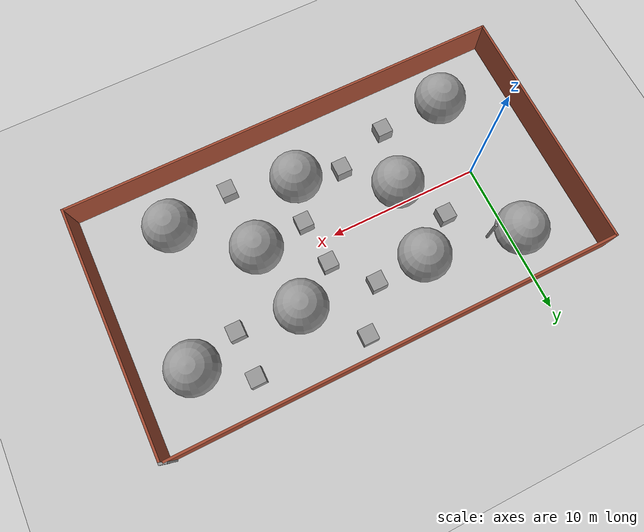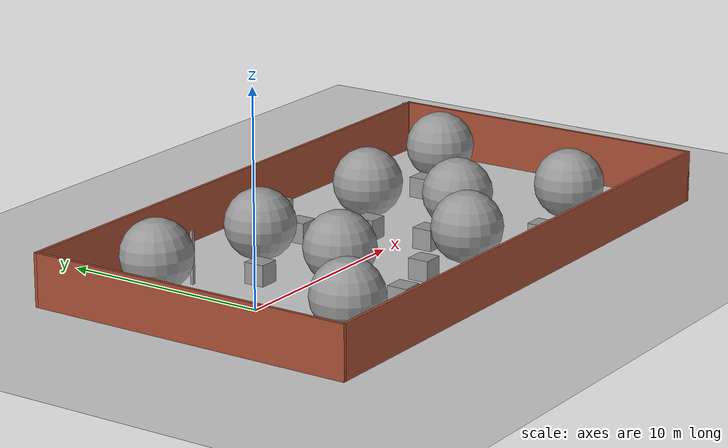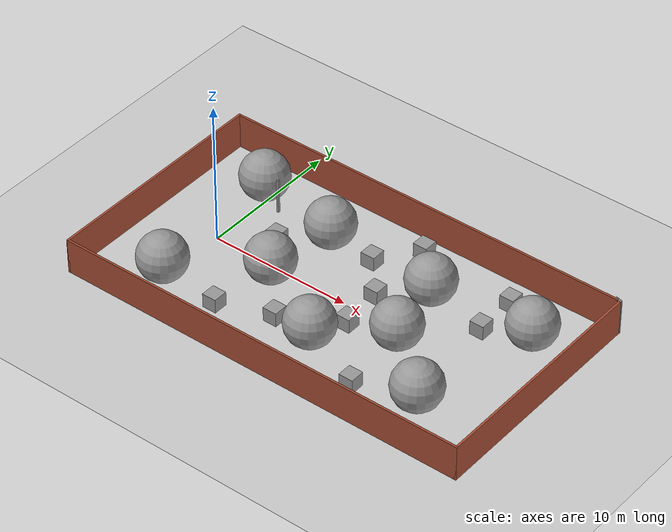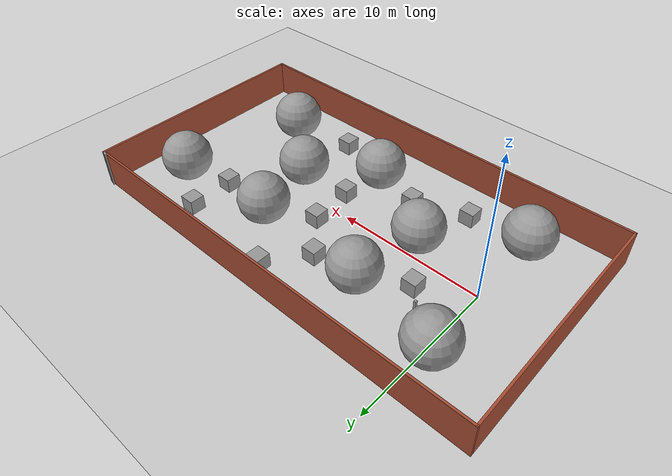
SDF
<sdf version="1.7">
 <world name="default">
  <light name="sun" type="directional">
   <pose>0 0 10 0 -0 0</pose>
   <diffuse>0.8 0.8 0.8 1</diffuse>
   <specular>0.2 0.2 0.2 1</specular>
   <attenuation>
    <range>1000</range>
    <constant>0.9</constant>
    <linear>0.01</linear>
    <quadratic>0.001</quadratic>
   </attenuation>
   <direction>-0.5 0.1 -0.9</direction>
   <spot><inner_angle>0</inner_angle><outer_angle>0</outer_angle><falloff>0</falloff></spot>
  </light>
  <model name="ground_plane">
   <static>1</static>
   <link name="link">
    <collision name="collision">
     <geometry><plane><normal>0 0 1</normal><size>100 100</size></plane></geometry>
     <surface>
      <contact><collide_bitmask>65535</collide_bitmask></contact>
      <friction><ode><mu>100</mu><mu2>50</mu2></ode></friction>
     </surface>
    </collision>
    <visual name="visual">
     <cast_shadows>0</cast_shadows>
     <geometry><plane><normal>0 0 1</normal><size>100 100</size></plane></geometry>
     <material>
      <script><uri>file://media/materials/scripts/gazebo.material</uri><name>Gazebo/Grey</name></script>
     </material>
    </visual>
   </link>
  </model>
  <gravity>0 0 -9.8</gravity>
  <magnetic_field>6e-06 2.3e-05 -4.2e-05</magnetic_field>
  <atmosphere type="adiabatic"/>
  <physics type="ode">
   <max_step_size>0.001</max_step_size>
   <real_time_factor>1</real_time_factor>
   <real_time_update_rate>1000</real_time_update_rate>
  </physics>
  <scene><ambient>0.4 0.4 0.4 1</ambient><background>0.7 0.7 0.7 1</background><shadows>1</shadows></scene>
  <audio><device>default</device></audio>
  <spherical_coordinates>
   <surface_model>EARTH_WGS84</surface_model>
   <latitude_deg>0</latitude_deg>
   <longitude_deg>0</longitude_deg>
   <elevation>0</elevation>
   <heading_deg>0</heading_deg>
  </spherical_coordinates>
  <model name="Untitled">
   <pose>9.73939 0.077684 0 0 -0 0</pose>
   <link name="Wall_19">
    <collision name="Wall_19_Collision">
     <geometry><box><size>16.25 0.15 2.5</size></box></geometry>
     <pose>0 0 1.25 0 -0 0</pose>
    </collision>
    <visual name="Wall_19_Visual">
     <pose>0 0 1.25 0 -0 0</pose>
     <geometry><box><size>16.25 0.15 2.5</size></box></geometry>
     <material>
      <script><uri>file://media/materials/scripts/gazebo.material</uri><name>Gazebo/Bricks</name></script>
      <ambient>1 1 1 1</ambient>
     </material>
     <meta><layer>0</layer></meta>
    </visual>
    <pose>-14.6834 -0.053721 0 0 -0 -1.5708</pose>
   </link>
   <link name="Wall_21">
    <collision name="Wall_21_Collision">
     <geometry><box><size>29.5 0.15 2.5</size></box></geometry>
     <pose>0 0 1.25 0 -0 0</pose>
    </collision>
    <visual name="Wall_21_Visual">
     <pose>0 0 1.25 0 -0 0</pose>
     <geometry><box><size>29.5 0.15 2.5</size></box></geometry>
     <material>
      <script><uri>file://media/materials/scripts/gazebo.material</uri><name>Gazebo/Bricks</name></script>
      <ambient>1 1 1 1</ambient>
     </material>
     <meta><layer>0</layer></meta>
    </visual>
    <pose>-0.008428 -8.10372 0 0 -0 0</pose>
   </link>
   <link name="Wall_23">
    <collision name="Wall_23_Collision">
     <geometry><box><size>29.25 0.15 2.5</size></box></geometry>
     <pose>0 0 1.25 0 -0 0</pose>
    </collision>
    <visual name="Wall_23_Visual">
     <pose>0 0 1.25 0 -0 0</pose>
     <geometry><box><size>29.25 0.15 2.5</size></box></geometry>
     <material>
      <script><uri>file://media/materials/scripts/gazebo.material</uri><name>Gazebo/Bricks</name></script>
      <ambient>1 1 1 1</ambient>
     </material>
     <meta><layer>0</layer></meta>
    </visual>
    <pose>-0.133428 7.99628 0 0 -0 0</pose>
   </link>
   <link name="Wall_27">
    <collision name="Wall_27_Collision">
     <geometry><box><size>16.25 0.15 2.5</size></box></geometry>
     <pose>0 0 1.25 0 -0 0</pose>
    </collision>
    <visual name="Wall_27_Visual">
     <pose>0 0 1.25 0 -0 0</pose>
     <geometry><box><size>16.25 0.15 2.5</size></box></geometry>
     <material>
      <script><uri>file://media/materials/scripts/gazebo.material</uri><name>Gazebo/Bricks</name></script>
      <ambient>1 1 1 1</ambient>
     </material>
     <meta><layer>0</layer></meta>
    </visual>
    <pose>14.6666 -0.053721 0 0 -0 1.5708</pose>
   </link>
   <link name="Wall_30">
    <collision name="Wall_30_Collision">
     <geometry><box><size>0.15 0.15 2.5</size></box></geometry>
     <pose>0 0 1.25 0 -0 0</pose>
    </collision>
    <visual name="Wall_30_Visual">
     <pose>0 0 1.25 0 -0 0</pose>
     <geometry><box><size>0.15 0.15 2.5</size></box></geometry>
     <material>
      <script><uri>file://media/materials/scripts/gazebo.material</uri><name>Gazebo/Grey</name></script>
      <ambient>1 1 1 1</ambient>
     </material>
     <meta><layer>0</layer></meta>
    </visual>
    <pose>14.6666 7.99628 0 0 -0 0</pose>
   </link>
   <link name="Wall_31">
    <collision name="Wall_31_Collision">
     <geometry><box><size>0.5 0.15 2.5</size></box></geometry>
     <pose>0 0 1.25 0 -0 0</pose>
    </collision>
    <visual name="Wall_31_Visual">
     <pose>0 0 1.25 0 -0 0</pose>
     <geometry><box><size>0.5 0.15 2.5</size></box></geometry>
     <material>
      <script><uri>file://media/materials/scripts/gazebo.material</uri><name>Gazebo/Grey</name></script>
      <ambient>1 1 1 1</ambient>
     </material>
     <meta><layer>0</layer></meta>
    </visual>
    <pose>14.4975 8.04157 0 0 -0 2.87979</pose>
   </link>
   <link name="Wall_37">
    <collision name="Wall_37_Collision">
     <geometry><box><size>0.15 0.15 2.5</size></box></geometry>
     <pose>0 0 1.25 0 -0 0</pose>
    </collision>
    <visual name="Wall_37_Visual">
     <pose>0 0 1.25 0 -0 0</pose>
     <geometry><box><size>0.15 0.15 2.5</size></box></geometry>
     <material>
      <script><uri>file://media/materials/scripts/gazebo.material</uri><name>Gazebo/Grey</name></script>
      <ambient>1 1 1 1</ambient>
     </material>
     <meta><layer>0</layer></meta>
    </visual>
    <pose>-8.48389 4.29671 0 0 -0 0</pose>
   </link>
   <static>1</static>
  </model>
  <model name="unit_sphere">
   <pose>5.7923 3.95608 1.67359 0 -0 0</pose>
   <link name="link">
    <inertial>
     <mass>1</mass>
     <inertia><ixx>0.1</ixx><ixy>0</ixy><ixz>0</ixz><iyy>0.1</iyy><iyz>0</iyz><izz>0.1</izz></inertia>
    </inertial>
    <collision name="collision"><geometry><sphere><radius>1.6736</radius></sphere></geometry></collision>
    <visual name="visual">
     <geometry><sphere><radius>1.6736</radius></sphere></geometry>
     <material>
      <script><name>Gazebo/Grey</name><uri>file://media/materials/scripts/gazebo.material</uri></script>
     </material>
    </visual>
   </link>
  </model>
  <model name="unit_sphere_clone">
   <pose>5.05828 -0.946899 1.6736 0 -0 0</pose>
   <link name="link">
    <inertial>
     <mass>1</mass>
     <inertia><ixx>0.1</ixx><ixy>0</ixy><ixz>0</ixz><iyy>0.1</iyy><iyz>0</iyz><izz>0.1</izz></inertia>
    </inertial>
    <collision name="collision"><geometry><sphere><radius>1.6736</radius></sphere></geometry></collision>
    <visual name="visual">
     <geometry><sphere><radius>1.6736</radius></sphere></geometry>
     <material>
      <script><name>Gazebo/Grey</name><uri>file://media/materials/scripts/gazebo.material</uri></script>
     </material>
    </visual>
   </link>
  </model>
  <model name="unit_sphere_clone_0">
   <pose>-0.131006 -4.9221 1.6736 0 -0 0</pose>
   <link name="link">
    <inertial>
     <mass>1</mass>
     <inertia><ixx>0.1</ixx><ixy>0</ixy><ixz>0</ixz><iyy>0.1</iyy><iyz>0</iyz><izz>0.1</izz></inertia>
    </inertial>
    <collision name="collision"><geometry><sphere><radius>1.6736</radius></sphere></geometry></collision>
    <visual name="visual">
     <geometry><sphere><radius>1.6736</radius></sphere></geometry>
     <material>
      <script><name>Gazebo/Grey</name><uri>file://media/materials/scripts/gazebo.material</uri></script>
     </material>
    </visual>
   </link>
  </model>
  <model name="unit_sphere_clone_1">
   <pose>13.8546 3.50691 1.6736 0 -0 0</pose>
   <link name="link">
    <inertial>
     <mass>1</mass>
     <inertia><ixx>0.1</ixx><ixy>0</ixy><ixz>0</ixz><iyy>0.1</iyy><iyz>0</iyz><izz>0.1</izz></inertia>
    </inertial>
    <collision name="collision"><geometry><sphere><radius>1.6736</radius></sphere></geometry></collision>
    <visual name="visual">
     <geometry><sphere><radius>1.6736</radius></sphere></geometry>
     <material>
      <script><name>Gazebo/Grey</name><uri>file://media/materials/scripts/gazebo.material</uri></script>
     </material>
    </visual>
   </link>
  </model>
  <model name="unit_sphere_clone_2">
   <pose>10.6559 -4.0925 1.6736 0 -0 0</pose>
   <link name="link">
    <inertial>
     <mass>1</mass>
     <inertia><ixx>0.1</ixx><ixy>0</ixy><ixz>0</ixz><iyy>0.1</iyy><iyz>0</iyz><izz>0.1</izz></inertia>
    </inertial>
    <collision name="collision"><geometry><sphere><radius>1.6736</radius></sphere></geometry></collision>
    <visual name="visual">
     <geometry><sphere><radius>1.6736</radius></sphere></geometry>
     <material>
      <script><name>Gazebo/Grey</name><uri>file://media/materials/scripts/gazebo.material</uri></script>
     </material>
    </visual>
   </link>
  </model>
  <model name="unit_sphere_clone_3">
   <pose>-0.380016 5.07662 1.6736 -0.051521 -0.009717 0.001516</pose>
   <link name="link">
    <inertial>
     <mass>1</mass>
     <inertia><ixx>0.1</ixx><ixy>0</ixy><ixz>0</ixz><iyy>0.1</iyy><iyz>0</iyz><izz>0.1</izz></inertia>
    </inertial>
    <collision name="collision"><geometry><sphere><radius>1.6736</radius></sphere></geometry></collision>
    <visual name="visual">
     <geometry><sphere><radius>1.6736</radius></sphere></geometry>
     <material>
      <script><name>Gazebo/Grey</name><uri>file://media/materials/scripts/gazebo.material</uri></script>
     </material>
    </visual>
   </link>
  </model>
  <model name="unit_sphere_clone_4">
   <pose>14.7641 -0.973184 1.6736 0 -0 0</pose>
   <link name="link">
    <inertial>
     <mass>1</mass>
     <inertia><ixx>0.1</ixx><ixy>0</ixy><ixz>0</ixz><iyy>0.1</iyy><iyz>0</iyz><izz>0.1</izz></inertia>
    </inertial>
    <collision name="collision"><geometry><sphere><radius>1.6736</radius></sphere></geometry></collision>
    <visual name="visual">
     <geometry><sphere><radius>1.6736</radius></sphere></geometry>
     <material>
      <script><name>Gazebo/Grey</name><uri>file://media/materials/scripts/gazebo.material</uri></script>
     </material>
    </visual>
   </link>
  </model>
  <model name="unit_box">
   <pose>11.137 1.581 0.499995 0 -1e-05 0</pose>
   <link name="link">
    <inertial>
     <mass>1</mass>
     <inertia>
      <ixx>0.166667</ixx>
      <ixy>0</ixy>
      <ixz>0</ixz>
      <iyy>0.166667</iyy>
      <iyz>0</iyz>
      <izz>0.166667</izz>
     </inertia>
    </inertial>
    <collision name="collision"><geometry><box><size>1 1 1</size></box></geometry></collision>
    <visual name="visual">
     <geometry><box><size>1 1 1</size></box></geometry>
     <material>
      <script><name>Gazebo/Grey</name><uri>file://media/materials/scripts/gazebo.material</uri></script>
     </material>
    </visual>
   </link>
  </model>
  <model name="unit_box_clone">
   <pose>9 4.00001 0.499995 -1e-05 -0 -0</pose>
   <link name="link">
    <inertial>
     <mass>1</mass>
     <inertia>
      <ixx>0.166667</ixx>
      <ixy>0</ixy>
      <ixz>0</ixz>
      <iyy>0.166667</iyy>
      <iyz>0</iyz>
      <izz>0.166667</izz>
     </inertia>
    </inertial>
    <collision name="collision"><geometry><box><size>1 1 1</size></box></geometry></collision>
    <visual name="visual">
     <geometry><box><size>1 1 1</size></box></geometry>
     <material>
      <script><name>Gazebo/Grey</name><uri>file://media/materials/scripts/gazebo.material</uri></script>
     </material>
    </visual>
   </link>
  </model>
  <model name="unit_box_clone_0">
   <pose>7.63647 -3.71173 0.499995 1e-05 -0 0</pose>
   <link name="link">
    <inertial>
     <mass>1</mass>
     <inertia>
      <ixx>0.166667</ixx>
      <ixy>0</ixy>
      <ixz>0</ixz>
      <iyy>0.166667</iyy>
      <iyz>0</iyz>
      <izz>0.166667</izz>
     </inertia>
    </inertial>
    <collision name="collision"><geometry><box><size>1 1 1</size></box></geometry></collision>
    <visual name="visual">
     <geometry><box><size>1 1 1</size></box></geometry>
     <material>
      <script><name>Gazebo/Grey</name><uri>file://media/materials/scripts/gazebo.material</uri></script>
     </material>
    </visual>
   </link>
  </model>
  <model name="unit_box_clone_1">
   <pose>4 -5 0.499995 0 1e-05 0</pose>
   <link name="link">
    <inertial>
     <mass>1</mass>
     <inertia>
      <ixx>0.166667</ixx>
      <ixy>0</ixy>
      <ixz>0</ixz>
      <iyy>0.166667</iyy>
      <iyz>0</iyz>
      <izz>0.166667</izz>
     </inertia>
    </inertial>
    <collision name="collision"><geometry><box><size>1 1 1</size></box></geometry></collision>
    <visual name="visual">
     <geometry><box><size>1 1 1</size></box></geometry>
     <material>
      <script><name>Gazebo/Grey</name><uri>file://media/materials/scripts/gazebo.material</uri></script>
     </material>
    </visual>
   </link>
  </model>
  <model name="unit_box_clone_2">
   <pose>11.4125 -1.46392 0.499995 -1e-05 -0 0</pose>
   <link name="link">
    <inertial>
     <mass>1</mass>
     <inertia>
      <ixx>0.166667</ixx>
      <ixy>0</ixy>
      <ixz>0</ixz>
      <iyy>0.166667</iyy>
      <iyz>0</iyz>
      <izz>0.166667</izz>
     </inertia>
    </inertial>
    <collision name="collision"><geometry><box><size>1 1 1</size></box></geometry></collision>
    <visual name="visual">
     <geometry><box><size>1 1 1</size></box></geometry>
     <material>
      <script><name>Gazebo/Grey</name><uri>file://media/materials/scripts/gazebo.material</uri></script>
     </material>
    </visual>
   </link>
  </model>
  <model name="unit_box_clone_3">
   <pose>18 6 0.499995 -1e-05 -0 0</pose>
   <link name="link">
    <inertial>
     <mass>1</mass>
     <inertia>
      <ixx>0.166667</ixx>
      <ixy>0</ixy>
      <ixz>0</ixz>
      <iyy>0.166667</iyy>
      <iyz>0</iyz>
      <izz>0.166667</izz>
     </inertia>
    </inertial>
    <collision name="collision"><geometry><box><size>1 1 1</size></box></geometry></collision>
    <visual name="visual">
     <geometry><box><size>1 1 1</size></box></geometry>
     <material>
      <script><name>Gazebo/Grey</name><uri>file://media/materials/scripts/gazebo.material</uri></script>
     </material>
    </visual>
   </link>
  </model>
  <model name="unit_box_clone_4">
   <pose>18 3 0.499995 0 -1e-05 0</pose>
   <link name="link">
    <inertial>
     <mass>1</mass>
     <inertia>
      <ixx>0.166667</ixx>
      <ixy>0</ixy>
      <ixz>0</ixz>
      <iyy>0.166667</iyy>
      <iyz>0</iyz>
      <izz>0.166667</izz>
     </inertia>
    </inertial>
    <collision name="collision"><geometry><box><size>1 1 1</size></box></geometry></collision>
    <visual name="visual">
     <geometry><box><size>1 1 1</size></box></geometry>
     <material>
      <script><name>Gazebo/Grey</name><uri>file://media/materials/scripts/gazebo.material</uri></script>
     </material>
    </visual>
   </link>
  </model>
  <model name="unit_box_clone_5">
   <pose>14.8932 -5.54659 0.499995 1e-05 -0 0</pose>
   <link name="link">
    <inertial>
     <mass>1</mass>
     <inertia>
      <ixx>0.166667</ixx>
      <ixy>0</ixy>
      <ixz>0</ixz>
      <iyy>0.166667</iyy>
      <iyz>0</iyz>
      <izz>0.166667</izz>
     </inertia>
    </inertial>
    <collision name="collision"><geometry><box><size>1 1 1</size></box></geometry></collision>
    <visual name="visual">
     <geometry><box><size>1 1 1</size></box></geometry>
     <material>
      <script><name>Gazebo/Grey</name><uri>file://media/materials/scripts/gazebo.material</uri></script>
     </material>
    </visual>
   </link>
  </model>
  <model name="unit_sphere_clone_2_clone">
   <pose>19 -4.56428 1.6736 0 -0 0</pose>
   <link name="link">
    <inertial>
     <mass>1</mass>
     <inertia><ixx>0.1</ixx><ixy>0</ixy><ixz>0</ixz><iyy>0.1</iyy><iyz>0</iyz><izz>0.1</izz></inertia>
    </inertial>
    <collision name="collision"><geometry><sphere><radius>1.6736</radius></sphere></geometry></collision>
    <visual name="visual">
     <geometry><sphere><radius>1.6736</radius></sphere></geometry>
     <material>
      <script><name>Gazebo/Grey</name><uri>file://media/materials/scripts/gazebo.material</uri></script>
     </material>
    </visual>
   </link>
  </model>
  <model name="unit_box_clone_6">
   <pose>10.9568 6.67506 0.499995 0 -1e-05 0</pose>
   <link name="link">
    <inertial>
     <mass>1</mass>
     <inertia>
      <ixx>0.166667</ixx>
      <ixy>0</ixy>
      <ixz>0</ixz>
      <iyy>0.166667</iyy>
      <iyz>0</iyz>
      <izz>0.166667</izz>
     </inertia>
    </inertial>
    <collision name="collision"><geometry><box><size>1 1 1</size></box></geometry></collision>
    <visual name="visual">
     <geometry><box><size>1 1 1</size></box></geometry>
     <material>
      <script><name>Gazebo/Grey</name><uri>file://media/materials/scripts/gazebo.material</uri></script>
     </material>
    </visual>
   </link>
  </model>
  <model name="unit_sphere_clone_1_clone">
   <pose>21 4 1.6736 0 -0 0</pose>
   <link name="link">
    <inertial>
     <mass>1</mass>
     <inertia><ixx>0.1</ixx><ixy>0</ixy><ixz>0</ixz><iyy>0.1</iyy><iyz>0</iyz><izz>0.1</izz></inertia>
    </inertial>
    <collision name="collision"><geometry><sphere><radius>1.6736</radius></sphere></geometry></collision>
    <visual name="visual">
     <geometry><sphere><radius>1.6736</radius></sphere></geometry>
     <material>
      <script><name>Gazebo/Grey</name><uri>file://media/materials/scripts/gazebo.material</uri></script>
     </material>
    </visual>
   </link>
  </model>
  <model name="unit_box_clone_0_clone">
   <pose>3.09291 2.00425 0.499995 1e-05 -0 0</pose>
   <link name="link">
    <inertial>
     <mass>1</mass>
     <inertia>
      <ixx>0.166667</ixx>
      <ixy>0</ixy>
      <ixz>0</ixz>
      <iyy>0.166667</iyy>
      <iyz>0</iyz>
      <izz>0.166667</izz>
     </inertia>
    </inertial>
    <collision name="collision"><geometry><box><size>1 1 1</size></box></geometry></collision>
    <visual name="visual">
     <geometry><box><size>1 1 1</size></box></geometry>
     <material>
      <script><name>Gazebo/Grey</name><uri>file://media/materials/scripts/gazebo.material</uri></script>
     </material>
    </visual>
   </link>
  </model>
 </world>
</sdf>
